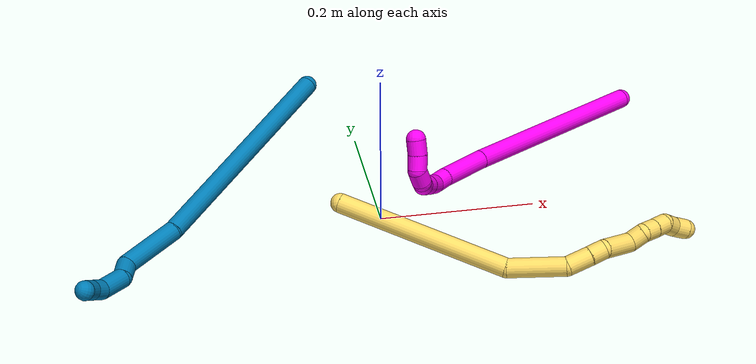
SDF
<sdf version="1.7">
 <world name="default">
  <model name="photoneo_s_sensor">
   <static>1</static>
   <pose>0 0 2 1.57079 1.57079 3.14159</pose>
   <link name="link">
    <inertial><mass>0.1</mass></inertial>
    <sensor name="sensor" type="depth">
     <update_rate>30</update_rate>
     <camera>
      <horizontal_fov>1.22</horizontal_fov>
      <image><width>1920</width><height>1200</height><format>B8G8R8</format></image>
      <clip><near>0.1</near><far>4</far></clip>
      <depth_camera><output>points</output></depth_camera>
     </camera>
     <plugin name="camera_plugin" filename="libgazebo_ros_depth_camera.so">
      <baseline>0.2</baseline>
      <alwaysOn>1</alwaysOn>
      <updateRate>0.0</updateRate>
      <cameraName>camera_ir</cameraName>
      <imageTopicName>/camera/color/image_raw</imageTopicName>
      <cameraInfoTopicName>/camera/color/camera_info</cameraInfoTopicName>
      <depthImageTopicName>/camera/depth/image_raw</depthImageTopicName>
      <depthImageCameraInfoTopicName>/camera/depth/camera_info</depthImageCameraInfoTopicName>
      <pointCloudTopicName>/camera/depth/points</pointCloudTopicName>
      <frameName>fr_optical</frameName>
      <pointCloudCutoff>0.1</pointCloudCutoff>
      <pointCloudCutoffMax>2.0</pointCloudCutoffMax>
      <distortionK1>0</distortionK1>
      <distortionK2>0</distortionK2>
      <distortionK3>0</distortionK3>
      <distortionT1>0</distortionT1>
      <distortionT2>0</distortionT2>
      <CxPrime>0</CxPrime>
      <Cx>0</Cx>
      <Cy>0</Cy>
      <focalLength>0</focalLength>
      <hackBaseline>0</hackBaseline>
     </plugin>
    </sensor>
   </link>
  </model>
  <model name="bin">
   <static>1</static>
   <link name="bottom">
    <collision name="collision-bottom">
     <pose>0 0 -0.01 0 -0 0</pose>
     <geometry><box><size>0.8 0.6 0.02</size></box></geometry>
     <surface>
      <friction><ode><mu>100</mu><mu2>100</mu2></ode></friction>
      <contact><collide_bitmask>65535</collide_bitmask></contact>
     </surface>
    </collision>
   </link>
   <link name="west_wall">
    <collision name="collision-west_wall">
     <pose>-0.41 0 0.1 0 -0 0</pose>
     <geometry><box><size>0.02 0.6 0.2</size></box></geometry>
     <surface>
      <friction><ode><mu>100</mu><mu2>100</mu2></ode></friction>
      <contact><collide_bitmask>65535</collide_bitmask></contact>
     </surface>
    </collision>
   </link>
   <link name="east_wall">
    <collision name="collision-east_wall">
     <pose>0.41 0 0.1 0 -0 0</pose>
     <geometry><box><size>0.02 0.6 0.2</size></box></geometry>
     <surface>
      <friction><ode><mu>100</mu><mu2>100</mu2></ode></friction>
      <contact><collide_bitmask>65535</collide_bitmask></contact>
     </surface>
    </collision>
   </link>
   <link name="south_wall">
    <collision name="collision-south_wall">
     <pose>0 -0.31 0.1 0 -0 0</pose>
     <geometry><box><size>0.8 0.02 0.2</size></box></geometry>
     <surface>
      <friction><ode><mu>100</mu><mu2>100</mu2></ode></friction>
      <contact><collide_bitmask>65535</collide_bitmask></contact>
     </surface>
    </collision>
   </link>
   <link name="north_wall">
    <collision name="collision-north_wall">
     <pose>0 0.31 0.1 0 -0 0</pose>
     <geometry><box><size>0.8 0.02 0.2</size></box></geometry>
     <surface>
      <friction><ode><mu>100</mu><mu2>100</mu2></ode></friction>
      <contact><collide_bitmask>65535</collide_bitmask></contact>
     </surface>
    </collision>
   </link>
  </model>
  <model name="5">
   <static>0</static>
   <link name="5">
    <collision name="collision-cylinder-e_1_1_4">
     <pose>0.066609 -0.011921 0.091947 0.128932 0.622981 0.041564</pose>
     <geometry><cylinder><radius>0.0125</radius><length>0.228325</length></cylinder></geometry>
     <surface>
      <friction><ode><mu>1.16</mu><mu2>1.16</mu2><slip1>0</slip1><slip2>0</slip2></ode></friction>
      <contact><ode><kp>1e+06</kp><kd>1</kd><max_vel>0</max_vel><min_depth>0.001</min_depth></ode></contact>
     </surface>
    </collision>
    <visual name="visual-cylinder-e_1_1_4">
     <pose>0.066609 -0.011921 0.091947 0.128932 0.622981 0.041564</pose>
     <geometry><cylinder><radius>0.0125</radius><length>0.228325</length></cylinder></geometry>
     <material><ambient>1 0.858824 0.4 1</ambient></material>
    </visual>
    <collision name="collision-cylinder-e_2_4_5">
     <pose>0.149757 -0.013694 0.215946 -0.306637 0.457167 -0.071872</pose>
     <geometry><cylinder><radius>0.0125</radius><length>0.074936</length></cylinder></geometry>
     <surface>
      <friction><ode><mu>1.16</mu><mu2>1.16</mu2><slip1>0</slip1><slip2>0</slip2></ode></friction>
      <contact><ode><kp>1e+06</kp><kd>1</kd><max_vel>0</max_vel><min_depth>0.001</min_depth></ode></contact>
     </surface>
    </collision>
    <visual name="visual-cylinder-e_2_4_5">
     <pose>0.149757 -0.013694 0.215946 -0.306637 0.457167 -0.071872</pose>
     <geometry><cylinder><radius>0.0125</radius><length>0.074936</length></cylinder></geometry>
     <material><ambient>1 0.858824 0.4 1</ambient></material>
    </visual>
    <collision name="collision-cylinder-e_3_5_6">
     <pose>0.171284 0.007178 0.258319 -0.804494 0.323383 -0.138571</pose>
     <geometry><cylinder><radius>0.0125</radius><length>0.031395</length></cylinder></geometry>
     <surface>
      <friction><ode><mu>1.16</mu><mu2>1.16</mu2><slip1>0</slip1><slip2>0</slip2></ode></friction>
      <contact><ode><kp>1e+06</kp><kd>1</kd><max_vel>0</max_vel><min_depth>0.001</min_depth></ode></contact>
     </surface>
    </collision>
    <visual name="visual-cylinder-e_3_5_6">
     <pose>0.171284 0.007178 0.258319 -0.804494 0.323383 -0.138571</pose>
     <geometry><cylinder><radius>0.0125</radius><length>0.031395</length></cylinder></geometry>
     <material><ambient>1 0.858824 0.4 1</ambient></material>
    </visual>
    <collision name="collision-cylinder-e_4_6_7">
     <pose>0.179536 0.025158 0.274966 -0.853842 0.326867 -0.149749</pose>
     <geometry><cylinder><radius>0.0125</radius><length>0.020329</length></cylinder></geometry>
     <surface>
      <friction><ode><mu>1.16</mu><mu2>1.16</mu2><slip1>0</slip1><slip2>0</slip2></ode></friction>
      <contact><ode><kp>1e+06</kp><kd>1</kd><max_vel>0</max_vel><min_depth>0.001</min_depth></ode></contact>
     </surface>
    </collision>
    <visual name="visual-cylinder-e_4_6_7">
     <pose>0.179536 0.025158 0.274966 -0.853842 0.326867 -0.149749</pose>
     <geometry><cylinder><radius>0.0125</radius><length>0.020329</length></cylinder></geometry>
     <material><ambient>1 0.858824 0.4 1</ambient></material>
    </visual>
    <collision name="collision-cylinder-e_5_7_8">
     <pose>0.19725 0.048478 0.286655 -1.24851 0.706389 -0.519137</pose>
     <geometry><cylinder><radius>0.0125</radius><length>0.044527</length></cylinder></geometry>
     <surface>
      <friction><ode><mu>1.16</mu><mu2>1.16</mu2><slip1>0</slip1><slip2>0</slip2></ode></friction>
      <contact><ode><kp>1e+06</kp><kd>1</kd><max_vel>0</max_vel><min_depth>0.001</min_depth></ode></contact>
     </surface>
    </collision>
    <visual name="visual-cylinder-e_5_7_8">
     <pose>0.19725 0.048478 0.286655 -1.24851 0.706389 -0.519137</pose>
     <geometry><cylinder><radius>0.0125</radius><length>0.044527</length></cylinder></geometry>
     <material><ambient>1 0.858824 0.4 1</ambient></material>
    </visual>
    <collision name="collision-cylinder-e_6_8_9">
     <pose>0.212707 0.071733 0.299107 -0.79263 0.099261 -0.041564</pose>
     <geometry><cylinder><radius>0.0125</radius><length>0.020292</length></cylinder></geometry>
     <surface>
      <friction><ode><mu>1.16</mu><mu2>1.16</mu2><slip1>0</slip1><slip2>0</slip2></ode></friction>
      <contact><ode><kp>1e+06</kp><kd>1</kd><max_vel>0</max_vel><min_depth>0.001</min_depth></ode></contact>
     </surface>
    </collision>
    <visual name="visual-cylinder-e_6_8_9">
     <pose>0.212707 0.071733 0.299107 -0.79263 0.099261 -0.041564</pose>
     <geometry><cylinder><radius>0.0125</radius><length>0.020292</length></cylinder></geometry>
     <material><ambient>1 0.858824 0.4 1</ambient></material>
    </visual>
    <collision name="collision-cylinder-e_7_9_10">
     <pose>0.21948 0.086798 0.308402 -1.29743 0.614157 -0.471894</pose>
     <geometry><cylinder><radius>0.0125</radius><length>0.020016</length></cylinder></geometry>
     <surface>
      <friction><ode><mu>1.16</mu><mu2>1.16</mu2><slip1>0</slip1><slip2>0</slip2></ode></friction>
      <contact><ode><kp>1e+06</kp><kd>1</kd><max_vel>0</max_vel><min_depth>0.001</min_depth></ode></contact>
     </surface>
    </collision>
    <visual name="visual-cylinder-e_7_9_10">
     <pose>0.21948 0.086798 0.308402 -1.29743 0.614157 -0.471894</pose>
     <geometry><cylinder><radius>0.0125</radius><length>0.020016</length></cylinder></geometry>
     <material><ambient>1 0.858824 0.4 1</ambient></material>
    </visual>
    <collision name="collision-cylinder-e_8_10_11">
     <pose>0.230641 0.102767 0.313053 -1.27768 0.568008 -0.426997</pose>
     <geometry><cylinder><radius>0.0125</radius><length>0.020056</length></cylinder></geometry>
     <surface>
      <friction><ode><mu>1.16</mu><mu2>1.16</mu2><slip1>0</slip1><slip2>0</slip2></ode></friction>
      <contact><ode><kp>1e+06</kp><kd>1</kd><max_vel>0</max_vel><min_depth>0.001</min_depth></ode></contact>
     </surface>
    </collision>
    <visual name="visual-cylinder-e_8_10_11">
     <pose>0.230641 0.102767 0.313053 -1.27768 0.568008 -0.426997</pose>
     <geometry><cylinder><radius>0.0125</radius><length>0.020056</length></cylinder></geometry>
     <material><ambient>1 0.858824 0.4 1</ambient></material>
    </visual>
    <collision name="collision-cylinder-e_9_11_12">
     <pose>0.244844 0.11565 0.315047 -1.66402 1.07081 -1.1545</pose>
     <geometry><cylinder><radius>0.0125</radius><length>0.020074</length></cylinder></geometry>
     <surface>
      <friction><ode><mu>1.16</mu><mu2>1.16</mu2><slip1>0</slip1><slip2>0</slip2></ode></friction>
      <contact><ode><kp>1e+06</kp><kd>1</kd><max_vel>0</max_vel><min_depth>0.001</min_depth></ode></contact>
     </surface>
    </collision>
    <visual name="visual-cylinder-e_9_11_12">
     <pose>0.244844 0.11565 0.315047 -1.66402 1.07081 -1.1545</pose>
     <geometry><cylinder><radius>0.0125</radius><length>0.020074</length></cylinder></geometry>
     <material><ambient>1 0.858824 0.4 1</ambient></material>
    </visual>
    <collision name="collision-cylinder-e_10_12_2">
     <pose>0.262127 0.124477 0.318122 -0.853176 1.00703 -0.490657</pose>
     <geometry><cylinder><radius>0.0125</radius><length>0.020051</length></cylinder></geometry>
     <surface>
      <friction><ode><mu>1.16</mu><mu2>1.16</mu2><slip1>0</slip1><slip2>0</slip2></ode></friction>
      <contact><ode><kp>1e+06</kp><kd>1</kd><max_vel>0</max_vel><min_depth>0.001</min_depth></ode></contact>
     </surface>
    </collision>
    <visual name="visual-cylinder-e_10_12_2">
     <pose>0.262127 0.124477 0.318122 -0.853176 1.00703 -0.490657</pose>
     <geometry><cylinder><radius>0.0125</radius><length>0.020051</length></cylinder></geometry>
     <material><ambient>1 0.858824 0.4 1</ambient></material>
    </visual>
    <collision name="collision-sphere-2">
     <pose>0.270601 0.128513 0.321645 0 -0 0</pose>
     <geometry><sphere><radius>0.0125</radius></sphere></geometry>
     <surface>
      <friction><ode><mu>1.16</mu><mu2>1.16</mu2><slip1>0</slip1><slip2>0</slip2></ode></friction>
      <contact><ode><kp>1e+06</kp><kd>1</kd><max_vel>0</max_vel><min_depth>0.001</min_depth></ode></contact>
     </surface>
    </collision>
    <visual name="visual-sphere-2">
     <pose>0.270601 0.128513 0.321645 0 -0 0</pose>
     <geometry><sphere><radius>0.0125</radius></sphere></geometry>
     <material><ambient>1 0.858824 0.4 1</ambient></material>
    </visual>
    <collision name="collision-sphere-12">
     <pose>0.253652 0.120441 0.314599 0 -0 0</pose>
     <geometry><sphere><radius>0.0125</radius></sphere></geometry>
     <surface>
      <friction><ode><mu>1.16</mu><mu2>1.16</mu2><slip1>0</slip1><slip2>0</slip2></ode></friction>
      <contact><ode><kp>1e+06</kp><kd>1</kd><max_vel>0</max_vel><min_depth>0.001</min_depth></ode></contact>
     </surface>
    </collision>
    <visual name="visual-sphere-12">
     <pose>0.253652 0.120441 0.314599 0 -0 0</pose>
     <geometry><sphere><radius>0.0125</radius></sphere></geometry>
     <material><ambient>1 0.858824 0.4 1</ambient></material>
    </visual>
    <collision name="collision-sphere-11">
     <pose>0.236036 0.110859 0.315495 0 -0 0</pose>
     <geometry><sphere><radius>0.0125</radius></sphere></geometry>
     <surface>
      <friction><ode><mu>1.16</mu><mu2>1.16</mu2><slip1>0</slip1><slip2>0</slip2></ode></friction>
      <contact><ode><kp>1e+06</kp><kd>1</kd><max_vel>0</max_vel><min_depth>0.001</min_depth></ode></contact>
     </surface>
    </collision>
    <visual name="visual-sphere-11">
     <pose>0.236036 0.110859 0.315495 0 -0 0</pose>
     <geometry><sphere><radius>0.0125</radius></sphere></geometry>
     <material><ambient>1 0.858824 0.4 1</ambient></material>
    </visual>
    <collision name="collision-sphere-10">
     <pose>0.225247 0.094674 0.31061 0 -0 0</pose>
     <geometry><sphere><radius>0.0125</radius></sphere></geometry>
     <surface>
      <friction><ode><mu>1.16</mu><mu2>1.16</mu2><slip1>0</slip1><slip2>0</slip2></ode></friction>
      <contact><ode><kp>1e+06</kp><kd>1</kd><max_vel>0</max_vel><min_depth>0.001</min_depth></ode></contact>
     </surface>
    </collision>
    <visual name="visual-sphere-10">
     <pose>0.225247 0.094674 0.31061 0 -0 0</pose>
     <geometry><sphere><radius>0.0125</radius></sphere></geometry>
     <material><ambient>1 0.858824 0.4 1</ambient></material>
    </visual>
    <collision name="collision-sphere-9">
     <pose>0.213712 0.078923 0.306194 0 -0 0</pose>
     <geometry><sphere><radius>0.0125</radius></sphere></geometry>
     <surface>
      <friction><ode><mu>1.16</mu><mu2>1.16</mu2><slip1>0</slip1><slip2>0</slip2></ode></friction>
      <contact><ode><kp>1e+06</kp><kd>1</kd><max_vel>0</max_vel><min_depth>0.001</min_depth></ode></contact>
     </surface>
    </collision>
    <visual name="visual-sphere-9">
     <pose>0.213712 0.078923 0.306194 0 -0 0</pose>
     <geometry><sphere><radius>0.0125</radius></sphere></geometry>
     <material><ambient>1 0.858824 0.4 1</ambient></material>
    </visual>
    <collision name="collision-sphere-4">
     <pose>0.133218 -0.023842 0.183894 0 -0 0</pose>
     <geometry><sphere><radius>0.0125</radius></sphere></geometry>
     <surface>
      <friction><ode><mu>1.16</mu><mu2>1.16</mu2><slip1>0</slip1><slip2>0</slip2></ode></friction>
      <contact><ode><kp>1e+06</kp><kd>1</kd><max_vel>0</max_vel><min_depth>0.001</min_depth></ode></contact>
     </surface>
    </collision>
    <visual name="visual-sphere-4">
     <pose>0.133218 -0.023842 0.183894 0 -0 0</pose>
     <geometry><sphere><radius>0.0125</radius></sphere></geometry>
     <material><ambient>1 0.858824 0.4 1</ambient></material>
    </visual>
    <collision name="collision-sphere-1">
     <geometry><sphere><radius>0.0125</radius></sphere></geometry>
     <surface>
      <friction><ode><mu>1.16</mu><mu2>1.16</mu2><slip1>0</slip1><slip2>0</slip2></ode></friction>
      <contact><ode><kp>1e+06</kp><kd>1</kd><max_vel>0</max_vel><min_depth>0.001</min_depth></ode></contact>
     </surface>
    </collision>
    <visual name="visual-sphere-1">
     <geometry><sphere><radius>0.0125</radius></sphere></geometry>
     <material><ambient>1 0.858824 0.4 1</ambient></material>
    </visual>
    <collision name="collision-sphere-8">
     <pose>0.211701 0.064542 0.292019 0 -0 0</pose>
     <geometry><sphere><radius>0.0125</radius></sphere></geometry>
     <surface>
      <friction><ode><mu>1.16</mu><mu2>1.16</mu2><slip1>0</slip1><slip2>0</slip2></ode></friction>
      <contact><ode><kp>1e+06</kp><kd>1</kd><max_vel>0</max_vel><min_depth>0.001</min_depth></ode></contact>
     </surface>
    </collision>
    <visual name="visual-sphere-8">
     <pose>0.211701 0.064542 0.292019 0 -0 0</pose>
     <geometry><sphere><radius>0.0125</radius></sphere></geometry>
     <material><ambient>1 0.858824 0.4 1</ambient></material>
    </visual>
    <collision name="collision-sphere-5">
     <pose>0.166296 -0.003545 0.247997 0 -0 0</pose>
     <geometry><sphere><radius>0.0125</radius></sphere></geometry>
     <surface>
      <friction><ode><mu>1.16</mu><mu2>1.16</mu2><slip1>0</slip1><slip2>0</slip2></ode></friction>
      <contact><ode><kp>1e+06</kp><kd>1</kd><max_vel>0</max_vel><min_depth>0.001</min_depth></ode></contact>
     </surface>
    </collision>
    <visual name="visual-sphere-5">
     <pose>0.166296 -0.003545 0.247997 0 -0 0</pose>
     <geometry><sphere><radius>0.0125</radius></sphere></geometry>
     <material><ambient>1 0.858824 0.4 1</ambient></material>
    </visual>
    <collision name="collision-sphere-6">
     <pose>0.176272 0.017901 0.26864 0 -0 0</pose>
     <geometry><sphere><radius>0.0125</radius></sphere></geometry>
     <surface>
      <friction><ode><mu>1.16</mu><mu2>1.16</mu2><slip1>0</slip1><slip2>0</slip2></ode></friction>
      <contact><ode><kp>1e+06</kp><kd>1</kd><max_vel>0</max_vel><min_depth>0.001</min_depth></ode></contact>
     </surface>
    </collision>
    <visual name="visual-sphere-6">
     <pose>0.176272 0.017901 0.26864 0 -0 0</pose>
     <geometry><sphere><radius>0.0125</radius></sphere></geometry>
     <material><ambient>1 0.858824 0.4 1</ambient></material>
    </visual>
    <collision name="collision-sphere-7">
     <pose>0.182799 0.032414 0.281291 0 -0 0</pose>
     <geometry><sphere><radius>0.0125</radius></sphere></geometry>
     <surface>
      <friction><ode><mu>1.16</mu><mu2>1.16</mu2><slip1>0</slip1><slip2>0</slip2></ode></friction>
      <contact><ode><kp>1e+06</kp><kd>1</kd><max_vel>0</max_vel><min_depth>0.001</min_depth></ode></contact>
     </surface>
    </collision>
    <visual name="visual-sphere-7">
     <pose>0.182799 0.032414 0.281291 0 -0 0</pose>
     <geometry><sphere><radius>0.0125</radius></sphere></geometry>
     <material><ambient>1 0.858824 0.4 1</ambient></material>
    </visual>
    <inertial>
     <pose>0.135493 0.018438 0.189726 0 -0 0</pose>
     <mass>0.5</mass>
     <inertia>
      <ixx>0.000908</ixx>
      <ixy>0</ixy>
      <ixz>0</ixz>
      <iyy>0.00108</iyy>
      <iyz>0</iyz>
      <izz>-0.000508</izz>
     </inertia>
    </inertial>
   </link>
   <pose>-0.058177 -0.03583 0.052596 0.7089 0.977564 0.084119</pose>
  </model>
  <model name="9">
   <static>0</static>
   <link name="9">
    <collision name="collision-cylinder-e_1_1_4">
     <pose>-0.048104 -0.108186 0.104189 0.804212 -0.309946 -0.132684</pose>
     <geometry><cylinder><radius>0.0125</radius><length>0.315427</length></cylinder></geometry>
     <surface>
      <friction><ode><mu>1.16</mu><mu2>1.16</mu2><slip1>0</slip1><slip2>0</slip2></ode></friction>
      <contact><ode><kp>1e+06</kp><kd>1</kd><max_vel>0</max_vel><min_depth>0.001</min_depth></ode></contact>
     </surface>
    </collision>
    <visual name="visual-cylinder-e_1_1_4">
     <pose>-0.048104 -0.108186 0.104189 0.804212 -0.309946 -0.132684</pose>
     <geometry><cylinder><radius>0.0125</radius><length>0.315427</length></cylinder></geometry>
     <material><ambient>0 0.490196 0.709804 1</ambient></material>
    </visual>
    <collision name="collision-cylinder-e_2_4_5">
     <pose>-0.114137 -0.237004 0.237121 0.622619 -0.469026 -0.153447</pose>
     <geometry><cylinder><radius>0.0125</radius><length>0.07933</length></cylinder></geometry>
     <surface>
      <friction><ode><mu>1.16</mu><mu2>1.16</mu2><slip1>0</slip1><slip2>0</slip2></ode></friction>
      <contact><ode><kp>1e+06</kp><kd>1</kd><max_vel>0</max_vel><min_depth>0.001</min_depth></ode></contact>
     </surface>
    </collision>
    <visual name="visual-cylinder-e_2_4_5">
     <pose>-0.114137 -0.237004 0.237121 0.622619 -0.469026 -0.153447</pose>
     <geometry><cylinder><radius>0.0125</radius><length>0.07933</length></cylinder></geometry>
     <material><ambient>0 0.490196 0.709804 1</ambient></material>
    </visual>
    <collision name="collision-cylinder-e_3_5_6">
     <pose>-0.131008 -0.269054 0.272583 1.03876 0.079661 0.045561</pose>
     <geometry><cylinder><radius>0.0125</radius><length>0.026579</length></cylinder></geometry>
     <surface>
      <friction><ode><mu>1.16</mu><mu2>1.16</mu2><slip1>0</slip1><slip2>0</slip2></ode></friction>
      <contact><ode><kp>1e+06</kp><kd>1</kd><max_vel>0</max_vel><min_depth>0.001</min_depth></ode></contact>
     </surface>
    </collision>
    <visual name="visual-cylinder-e_3_5_6">
     <pose>-0.131008 -0.269054 0.272583 1.03876 0.079661 0.045561</pose>
     <geometry><cylinder><radius>0.0125</radius><length>0.026579</length></cylinder></geometry>
     <material><ambient>0 0.490196 0.709804 1</ambient></material>
    </visual>
    <collision name="collision-cylinder-e_4_6_7">
     <pose>-0.133826 -0.28965 0.294457 0.544691 -0.215344 -0.060357</pose>
     <geometry><cylinder><radius>0.0125</radius><length>0.036272</length></cylinder></geometry>
     <surface>
      <friction><ode><mu>1.16</mu><mu2>1.16</mu2><slip1>0</slip1><slip2>0</slip2></ode></friction>
      <contact><ode><kp>1e+06</kp><kd>1</kd><max_vel>0</max_vel><min_depth>0.001</min_depth></ode></contact>
     </surface>
    </collision>
    <visual name="visual-cylinder-e_4_6_7">
     <pose>-0.133826 -0.28965 0.294457 0.544691 -0.215344 -0.060357</pose>
     <geometry><cylinder><radius>0.0125</radius><length>0.036272</length></cylinder></geometry>
     <material><ambient>0 0.490196 0.709804 1</ambient></material>
    </visual>
    <collision name="collision-cylinder-e_5_7_8">
     <pose>-0.136028 -0.30196 0.319251 0.31392 0.163597 0.025948</pose>
     <geometry><cylinder><radius>0.0125</radius><length>0.020547</length></cylinder></geometry>
     <surface>
      <friction><ode><mu>1.16</mu><mu2>1.16</mu2><slip1>0</slip1><slip2>0</slip2></ode></friction>
      <contact><ode><kp>1e+06</kp><kd>1</kd><max_vel>0</max_vel><min_depth>0.001</min_depth></ode></contact>
     </surface>
    </collision>
    <visual name="visual-cylinder-e_5_7_8">
     <pose>-0.136028 -0.30196 0.319251 0.31392 0.163597 0.025948</pose>
     <geometry><cylinder><radius>0.0125</radius><length>0.020547</length></cylinder></geometry>
     <material><ambient>0 0.490196 0.709804 1</ambient></material>
    </visual>
    <collision name="collision-cylinder-e_6_8_2">
     <pose>-0.130118 -0.309555 0.337916 0.459487 0.398355 0.094346</pose>
     <geometry><cylinder><radius>0.0125</radius><length>0.021845</length></cylinder></geometry>
     <surface>
      <friction><ode><mu>1.16</mu><mu2>1.16</mu2><slip1>0</slip1><slip2>0</slip2></ode></friction>
      <contact><ode><kp>1e+06</kp><kd>1</kd><max_vel>0</max_vel><min_depth>0.001</min_depth></ode></contact>
     </surface>
    </collision>
    <visual name="visual-cylinder-e_6_8_2">
     <pose>-0.130118 -0.309555 0.337916 0.459487 0.398355 0.094346</pose>
     <geometry><cylinder><radius>0.0125</radius><length>0.021845</length></cylinder></geometry>
     <material><ambient>0 0.490196 0.709804 1</ambient></material>
    </visual>
    <collision name="collision-sphere-2">
     <pose>-0.125881 -0.31402 0.346939 0 -0 0</pose>
     <geometry><sphere><radius>0.0125</radius></sphere></geometry>
     <surface>
      <friction><ode><mu>1.16</mu><mu2>1.16</mu2><slip1>0</slip1><slip2>0</slip2></ode></friction>
      <contact><ode><kp>1e+06</kp><kd>1</kd><max_vel>0</max_vel><min_depth>0.001</min_depth></ode></contact>
     </surface>
    </collision>
    <visual name="visual-sphere-2">
     <pose>-0.125881 -0.31402 0.346939 0 -0 0</pose>
     <geometry><sphere><radius>0.0125</radius></sphere></geometry>
     <material><ambient>0 0.490196 0.709804 1</ambient></material>
    </visual>
    <collision name="collision-sphere-4">
     <pose>-0.096207 -0.216371 0.208379 0 -0 0</pose>
     <geometry><sphere><radius>0.0125</radius></sphere></geometry>
     <surface>
      <friction><ode><mu>1.16</mu><mu2>1.16</mu2><slip1>0</slip1><slip2>0</slip2></ode></friction>
      <contact><ode><kp>1e+06</kp><kd>1</kd><max_vel>0</max_vel><min_depth>0.001</min_depth></ode></contact>
     </surface>
    </collision>
    <visual name="visual-sphere-4">
     <pose>-0.096207 -0.216371 0.208379 0 -0 0</pose>
     <geometry><sphere><radius>0.0125</radius></sphere></geometry>
     <material><ambient>0 0.490196 0.709804 1</ambient></material>
    </visual>
    <collision name="collision-sphere-1">
     <geometry><sphere><radius>0.0125</radius></sphere></geometry>
     <surface>
      <friction><ode><mu>1.16</mu><mu2>1.16</mu2><slip1>0</slip1><slip2>0</slip2></ode></friction>
      <contact><ode><kp>1e+06</kp><kd>1</kd><max_vel>0</max_vel><min_depth>0.001</min_depth></ode></contact>
     </surface>
    </collision>
    <visual name="visual-sphere-1">
     <geometry><sphere><radius>0.0125</radius></sphere></geometry>
     <material><ambient>0 0.490196 0.709804 1</ambient></material>
    </visual>
    <collision name="collision-sphere-8">
     <pose>-0.134355 -0.30509 0.328892 0 -0 0</pose>
     <geometry><sphere><radius>0.0125</radius></sphere></geometry>
     <surface>
      <friction><ode><mu>1.16</mu><mu2>1.16</mu2><slip1>0</slip1><slip2>0</slip2></ode></friction>
      <contact><ode><kp>1e+06</kp><kd>1</kd><max_vel>0</max_vel><min_depth>0.001</min_depth></ode></contact>
     </surface>
    </collision>
    <visual name="visual-sphere-8">
     <pose>-0.134355 -0.30509 0.328892 0 -0 0</pose>
     <geometry><sphere><radius>0.0125</radius></sphere></geometry>
     <material><ambient>0 0.490196 0.709804 1</ambient></material>
    </visual>
    <collision name="collision-sphere-5">
     <pose>-0.132066 -0.257638 0.265863 0 -0 0</pose>
     <geometry><sphere><radius>0.0125</radius></sphere></geometry>
     <surface>
      <friction><ode><mu>1.16</mu><mu2>1.16</mu2><slip1>0</slip1><slip2>0</slip2></ode></friction>
      <contact><ode><kp>1e+06</kp><kd>1</kd><max_vel>0</max_vel><min_depth>0.001</min_depth></ode></contact>
     </surface>
    </collision>
    <visual name="visual-sphere-5">
     <pose>-0.132066 -0.257638 0.265863 0 -0 0</pose>
     <geometry><sphere><radius>0.0125</radius></sphere></geometry>
     <material><ambient>0 0.490196 0.709804 1</ambient></material>
    </visual>
    <collision name="collision-sphere-6">
     <pose>-0.129951 -0.28047 0.279304 0 -0 0</pose>
     <geometry><sphere><radius>0.0125</radius></sphere></geometry>
     <surface>
      <friction><ode><mu>1.16</mu><mu2>1.16</mu2><slip1>0</slip1><slip2>0</slip2></ode></friction>
      <contact><ode><kp>1e+06</kp><kd>1</kd><max_vel>0</max_vel><min_depth>0.001</min_depth></ode></contact>
     </surface>
    </collision>
    <visual name="visual-sphere-6">
     <pose>-0.129951 -0.28047 0.279304 0 -0 0</pose>
     <geometry><sphere><radius>0.0125</radius></sphere></geometry>
     <material><ambient>0 0.490196 0.709804 1</ambient></material>
    </visual>
    <collision name="collision-sphere-7">
     <pose>-0.137702 -0.29883 0.30961 0 -0 0</pose>
     <geometry><sphere><radius>0.0125</radius></sphere></geometry>
     <surface>
      <friction><ode><mu>1.16</mu><mu2>1.16</mu2><slip1>0</slip1><slip2>0</slip2></ode></friction>
      <contact><ode><kp>1e+06</kp><kd>1</kd><max_vel>0</max_vel><min_depth>0.001</min_depth></ode></contact>
     </surface>
    </collision>
    <visual name="visual-sphere-7">
     <pose>-0.137702 -0.29883 0.30961 0 -0 0</pose>
     <geometry><sphere><radius>0.0125</radius></sphere></geometry>
     <material><ambient>0 0.490196 0.709804 1</ambient></material>
    </visual>
    <inertial>
     <pose>-0.076403 -0.1671 0.167084 0 -0 0</pose>
     <mass>0.5</mass>
     <inertia>
      <ixx>0.002184</ixx>
      <ixy>0</ixy>
      <ixz>0</ixz>
      <iyy>0.001568</iyy>
      <iyz>0</iyz>
      <izz>0.002681</izz>
     </inertia>
    </inertial>
   </link>
   <pose>-0.062692 0.20645 0.089812 0.722234 -0.815104 -0.481363</pose>
  </model>
  <model name="10">
   <static>0</static>
   <link name="10">
    <collision name="collision-cylinder-e_1_1_4">
     <pose>-0.05177 -0.062253 -0.110357 2.62798 -0.387889 -1.28438</pose>
     <geometry><cylinder><radius>0.0125</radius><length>0.273745</length></cylinder></geometry>
     <surface>
      <friction><ode><mu>1.16</mu><mu2>1.16</mu2><slip1>0</slip1><slip2>0</slip2></ode></friction>
      <contact><ode><kp>1e+06</kp><kd>1</kd><max_vel>0</max_vel><min_depth>0.001</min_depth></ode></contact>
     </surface>
    </collision>
    <visual name="visual-cylinder-e_1_1_4">
     <pose>-0.05177 -0.062253 -0.110357 2.62798 -0.387889 -1.28438</pose>
     <geometry><cylinder><radius>0.0125</radius><length>0.273745</length></cylinder></geometry>
     <material><ambient>1 0 0.964706 1</ambient></material>
    </visual>
    <collision name="collision-cylinder-e_2_4_5">
     <pose>-0.116728 -0.141047 -0.247085 2.58139 -0.400703 -1.22941</pose>
     <geometry><cylinder><radius>0.0125</radius><length>0.067618</length></cylinder></geometry>
     <surface>
      <friction><ode><mu>1.16</mu><mu2>1.16</mu2><slip1>0</slip1><slip2>0</slip2></ode></friction>
      <contact><ode><kp>1e+06</kp><kd>1</kd><max_vel>0</max_vel><min_depth>0.001</min_depth></ode></contact>
     </surface>
    </collision>
    <visual name="visual-cylinder-e_2_4_5">
     <pose>-0.116728 -0.141047 -0.247085 2.58139 -0.400703 -1.22941</pose>
     <geometry><cylinder><radius>0.0125</radius><length>0.067618</length></cylinder></geometry>
     <material><ambient>1 0 0.964706 1</ambient></material>
    </visual>
    <collision name="collision-cylinder-e_3_5_6">
     <pose>-0.135067 -0.163318 -0.281099 2.49824 -0.49466 -1.29681</pose>
     <geometry><cylinder><radius>0.0125</radius><length>0.021702</length></cylinder></geometry>
     <surface>
      <friction><ode><mu>1.16</mu><mu2>1.16</mu2><slip1>0</slip1><slip2>0</slip2></ode></friction>
      <contact><ode><kp>1e+06</kp><kd>1</kd><max_vel>0</max_vel><min_depth>0.001</min_depth></ode></contact>
     </surface>
    </collision>
    <visual name="visual-cylinder-e_3_5_6">
     <pose>-0.135067 -0.163318 -0.281099 2.49824 -0.49466 -1.29681</pose>
     <geometry><cylinder><radius>0.0125</radius><length>0.021702</length></cylinder></geometry>
     <material><ambient>1 0 0.964706 1</ambient></material>
    </visual>
    <collision name="collision-cylinder-e_4_6_7">
     <pose>-0.151937 -0.171539 -0.296121 2.81598 -0.984055 -2.54685</pose>
     <geometry><cylinder><radius>0.0125</radius><length>0.028144</length></cylinder></geometry>
     <surface>
      <friction><ode><mu>1.16</mu><mu2>1.16</mu2><slip1>0</slip1><slip2>0</slip2></ode></friction>
      <contact><ode><kp>1e+06</kp><kd>1</kd><max_vel>0</max_vel><min_depth>0.001</min_depth></ode></contact>
     </surface>
    </collision>
    <visual name="visual-cylinder-e_4_6_7">
     <pose>-0.151937 -0.171539 -0.296121 2.81598 -0.984055 -2.54685</pose>
     <geometry><cylinder><radius>0.0125</radius><length>0.028144</length></cylinder></geometry>
     <material><ambient>1 0 0.964706 1</ambient></material>
    </visual>
    <collision name="collision-cylinder-e_5_7_8">
     <pose>-0.174118 -0.175699 -0.309422 2.86696 -1.03946 -2.66766</pose>
     <geometry><cylinder><radius>0.0125</radius><length>0.024273</length></cylinder></geometry>
     <surface>
      <friction><ode><mu>1.16</mu><mu2>1.16</mu2><slip1>0</slip1><slip2>0</slip2></ode></friction>
      <contact><ode><kp>1e+06</kp><kd>1</kd><max_vel>0</max_vel><min_depth>0.001</min_depth></ode></contact>
     </surface>
    </collision>
    <visual name="visual-cylinder-e_5_7_8">
     <pose>-0.174118 -0.175699 -0.309422 2.86696 -1.03946 -2.66766</pose>
     <geometry><cylinder><radius>0.0125</radius><length>0.024273</length></cylinder></geometry>
     <material><ambient>1 0 0.964706 1</ambient></material>
    </visual>
    <collision name="collision-cylinder-e_6_8_9">
     <pose>-0.195985 -0.176559 -0.319625 -2.95518 -1.20565 2.87162</pose>
     <geometry><cylinder><radius>0.0125</radius><length>0.024418</length></cylinder></geometry>
     <surface>
      <friction><ode><mu>1.16</mu><mu2>1.16</mu2><slip1>0</slip1><slip2>0</slip2></ode></friction>
      <contact><ode><kp>1e+06</kp><kd>1</kd><max_vel>0</max_vel><min_depth>0.001</min_depth></ode></contact>
     </surface>
    </collision>
    <visual name="visual-cylinder-e_6_8_9">
     <pose>-0.195985 -0.176559 -0.319625 -2.95518 -1.20565 2.87162</pose>
     <geometry><cylinder><radius>0.0125</radius><length>0.024418</length></cylinder></geometry>
     <material><ambient>1 0 0.964706 1</ambient></material>
    </visual>
    <collision name="collision-cylinder-e_7_9_10">
     <pose>-0.213064 -0.169445 -0.329232 -2.27188 -0.602364 1.17886</pose>
     <geometry><cylinder><radius>0.0125</radius><length>0.020031</length></cylinder></geometry>
     <surface>
      <friction><ode><mu>1.16</mu><mu2>1.16</mu2><slip1>0</slip1><slip2>0</slip2></ode></friction>
      <contact><ode><kp>1e+06</kp><kd>1</kd><max_vel>0</max_vel><min_depth>0.001</min_depth></ode></contact>
     </surface>
    </collision>
    <visual name="visual-cylinder-e_7_9_10">
     <pose>-0.213064 -0.169445 -0.329232 -2.27188 -0.602364 1.17886</pose>
     <geometry><cylinder><radius>0.0125</radius><length>0.020031</length></cylinder></geometry>
     <material><ambient>1 0 0.964706 1</ambient></material>
    </visual>
    <collision name="collision-cylinder-e_8_10_11">
     <pose>-0.220602 -0.153405 -0.336045 -1.72262 -0.187073 0.217647</pose>
     <geometry><cylinder><radius>0.0125</radius><length>0.020044</length></cylinder></geometry>
     <surface>
      <friction><ode><mu>1.16</mu><mu2>1.16</mu2><slip1>0</slip1><slip2>0</slip2></ode></friction>
      <contact><ode><kp>1e+06</kp><kd>1</kd><max_vel>0</max_vel><min_depth>0.001</min_depth></ode></contact>
     </surface>
    </collision>
    <visual name="visual-cylinder-e_8_10_11">
     <pose>-0.220602 -0.153405 -0.336045 -1.72262 -0.187073 0.217647</pose>
     <geometry><cylinder><radius>0.0125</radius><length>0.020044</length></cylinder></geometry>
     <material><ambient>1 0 0.964706 1</ambient></material>
    </visual>
    <collision name="collision-cylinder-e_9_11_2">
     <pose>-0.22483 -0.134394 -0.340469 -1.8772 -0.23834 0.324069</pose>
     <geometry><cylinder><radius>0.0125</radius><length>0.020026</length></cylinder></geometry>
     <surface>
      <friction><ode><mu>1.16</mu><mu2>1.16</mu2><slip1>0</slip1><slip2>0</slip2></ode></friction>
      <contact><ode><kp>1e+06</kp><kd>1</kd><max_vel>0</max_vel><min_depth>0.001</min_depth></ode></contact>
     </surface>
    </collision>
    <visual name="visual-cylinder-e_9_11_2">
     <pose>-0.22483 -0.134394 -0.340469 -1.8772 -0.23834 0.324069</pose>
     <geometry><cylinder><radius>0.0125</radius><length>0.020026</length></cylinder></geometry>
     <material><ambient>1 0 0.964706 1</ambient></material>
    </visual>
    <collision name="collision-sphere-2">
     <pose>-0.227194 -0.125117 -0.343404 0 -0 0</pose>
     <geometry><sphere><radius>0.0125</radius></sphere></geometry>
     <surface>
      <friction><ode><mu>1.16</mu><mu2>1.16</mu2><slip1>0</slip1><slip2>0</slip2></ode></friction>
      <contact><ode><kp>1e+06</kp><kd>1</kd><max_vel>0</max_vel><min_depth>0.001</min_depth></ode></contact>
     </surface>
    </collision>
    <visual name="visual-sphere-2">
     <pose>-0.227194 -0.125117 -0.343404 0 -0 0</pose>
     <geometry><sphere><radius>0.0125</radius></sphere></geometry>
     <material><ambient>1 0 0.964706 1</ambient></material>
    </visual>
    <collision name="collision-sphere-11">
     <pose>-0.222466 -0.143671 -0.337534 0 -0 0</pose>
     <geometry><sphere><radius>0.0125</radius></sphere></geometry>
     <surface>
      <friction><ode><mu>1.16</mu><mu2>1.16</mu2><slip1>0</slip1><slip2>0</slip2></ode></friction>
      <contact><ode><kp>1e+06</kp><kd>1</kd><max_vel>0</max_vel><min_depth>0.001</min_depth></ode></contact>
     </surface>
    </collision>
    <visual name="visual-sphere-11">
     <pose>-0.222466 -0.143671 -0.337534 0 -0 0</pose>
     <geometry><sphere><radius>0.0125</radius></sphere></geometry>
     <material><ambient>1 0 0.964706 1</ambient></material>
    </visual>
    <collision name="collision-sphere-10">
     <pose>-0.218738 -0.163139 -0.334556 0 -0 0</pose>
     <geometry><sphere><radius>0.0125</radius></sphere></geometry>
     <surface>
      <friction><ode><mu>1.16</mu><mu2>1.16</mu2><slip1>0</slip1><slip2>0</slip2></ode></friction>
      <contact><ode><kp>1e+06</kp><kd>1</kd><max_vel>0</max_vel><min_depth>0.001</min_depth></ode></contact>
     </surface>
    </collision>
    <visual name="visual-sphere-10">
     <pose>-0.218738 -0.163139 -0.334556 0 -0 0</pose>
     <geometry><sphere><radius>0.0125</radius></sphere></geometry>
     <material><ambient>1 0 0.964706 1</ambient></material>
    </visual>
    <collision name="collision-sphere-9">
     <pose>-0.207389 -0.175751 -0.323909 0 -0 0</pose>
     <geometry><sphere><radius>0.0125</radius></sphere></geometry>
     <surface>
      <friction><ode><mu>1.16</mu><mu2>1.16</mu2><slip1>0</slip1><slip2>0</slip2></ode></friction>
      <contact><ode><kp>1e+06</kp><kd>1</kd><max_vel>0</max_vel><min_depth>0.001</min_depth></ode></contact>
     </surface>
    </collision>
    <visual name="visual-sphere-9">
     <pose>-0.207389 -0.175751 -0.323909 0 -0 0</pose>
     <geometry><sphere><radius>0.0125</radius></sphere></geometry>
     <material><ambient>1 0 0.964706 1</ambient></material>
    </visual>
    <collision name="collision-sphere-4">
     <pose>-0.10354 -0.124506 -0.220713 0 -0 0</pose>
     <geometry><sphere><radius>0.0125</radius></sphere></geometry>
     <surface>
      <friction><ode><mu>1.16</mu><mu2>1.16</mu2><slip1>0</slip1><slip2>0</slip2></ode></friction>
      <contact><ode><kp>1e+06</kp><kd>1</kd><max_vel>0</max_vel><min_depth>0.001</min_depth></ode></contact>
     </surface>
    </collision>
    <visual name="visual-sphere-4">
     <pose>-0.10354 -0.124506 -0.220713 0 -0 0</pose>
     <geometry><sphere><radius>0.0125</radius></sphere></geometry>
     <material><ambient>1 0 0.964706 1</ambient></material>
    </visual>
    <collision name="collision-sphere-1">
     <geometry><sphere><radius>0.0125</radius></sphere></geometry>
     <surface>
      <friction><ode><mu>1.16</mu><mu2>1.16</mu2><slip1>0</slip1><slip2>0</slip2></ode></friction>
      <contact><ode><kp>1e+06</kp><kd>1</kd><max_vel>0</max_vel><min_depth>0.001</min_depth></ode></contact>
     </surface>
    </collision>
    <visual name="visual-sphere-1">
     <geometry><sphere><radius>0.0125</radius></sphere></geometry>
     <material><ambient>1 0 0.964706 1</ambient></material>
    </visual>
    <collision name="collision-sphere-8">
     <pose>-0.184581 -0.177367 -0.315341 0 -0 0</pose>
     <geometry><sphere><radius>0.0125</radius></sphere></geometry>
     <surface>
      <friction><ode><mu>1.16</mu><mu2>1.16</mu2><slip1>0</slip1><slip2>0</slip2></ode></friction>
      <contact><ode><kp>1e+06</kp><kd>1</kd><max_vel>0</max_vel><min_depth>0.001</min_depth></ode></contact>
     </surface>
    </collision>
    <visual name="visual-sphere-8">
     <pose>-0.184581 -0.177367 -0.315341 0 -0 0</pose>
     <geometry><sphere><radius>0.0125</radius></sphere></geometry>
     <material><ambient>1 0 0.964706 1</ambient></material>
    </visual>
    <collision name="collision-sphere-5">
     <pose>-0.129916 -0.157589 -0.273458 0 -0 0</pose>
     <geometry><sphere><radius>0.0125</radius></sphere></geometry>
     <surface>
      <friction><ode><mu>1.16</mu><mu2>1.16</mu2><slip1>0</slip1><slip2>0</slip2></ode></friction>
      <contact><ode><kp>1e+06</kp><kd>1</kd><max_vel>0</max_vel><min_depth>0.001</min_depth></ode></contact>
     </surface>
    </collision>
    <visual name="visual-sphere-5">
     <pose>-0.129916 -0.157589 -0.273458 0 -0 0</pose>
     <geometry><sphere><radius>0.0125</radius></sphere></geometry>
     <material><ambient>1 0 0.964706 1</ambient></material>
    </visual>
    <collision name="collision-sphere-6">
     <pose>-0.140218 -0.169047 -0.28874 0 -0 0</pose>
     <geometry><sphere><radius>0.0125</radius></sphere></geometry>
     <surface>
      <friction><ode><mu>1.16</mu><mu2>1.16</mu2><slip1>0</slip1><slip2>0</slip2></ode></friction>
      <contact><ode><kp>1e+06</kp><kd>1</kd><max_vel>0</max_vel><min_depth>0.001</min_depth></ode></contact>
     </surface>
    </collision>
    <visual name="visual-sphere-6">
     <pose>-0.140218 -0.169047 -0.28874 0 -0 0</pose>
     <geometry><sphere><radius>0.0125</radius></sphere></geometry>
     <material><ambient>1 0 0.964706 1</ambient></material>
    </visual>
    <collision name="collision-sphere-7">
     <pose>-0.163655 -0.174032 -0.303503 0 -0 0</pose>
     <geometry><sphere><radius>0.0125</radius></sphere></geometry>
     <surface>
      <friction><ode><mu>1.16</mu><mu2>1.16</mu2><slip1>0</slip1><slip2>0</slip2></ode></friction>
      <contact><ode><kp>1e+06</kp><kd>1</kd><max_vel>0</max_vel><min_depth>0.001</min_depth></ode></contact>
     </surface>
    </collision>
    <visual name="visual-sphere-7">
     <pose>-0.163655 -0.174032 -0.303503 0 -0 0</pose>
     <geometry><sphere><radius>0.0125</radius></sphere></geometry>
     <material><ambient>1 0 0.964706 1</ambient></material>
    </visual>
    <inertial>
     <pose>-0.102952 -0.105374 -0.19363 0 -0 0</pose>
     <mass>0.5</mass>
     <inertia>
      <ixx>-0.001112</ixx>
      <ixy>0</ixy>
      <ixz>0</ixz>
      <iyy>-0.001675</iyy>
      <iyz>0</iyz>
      <izz>0.001438</izz>
     </inertia>
    </inertial>
   </link>
   <pose>0.379267 0.22757 0.012184 1.87156 0.588709 1.69827</pose>
  </model>
 </world>
</sdf>
